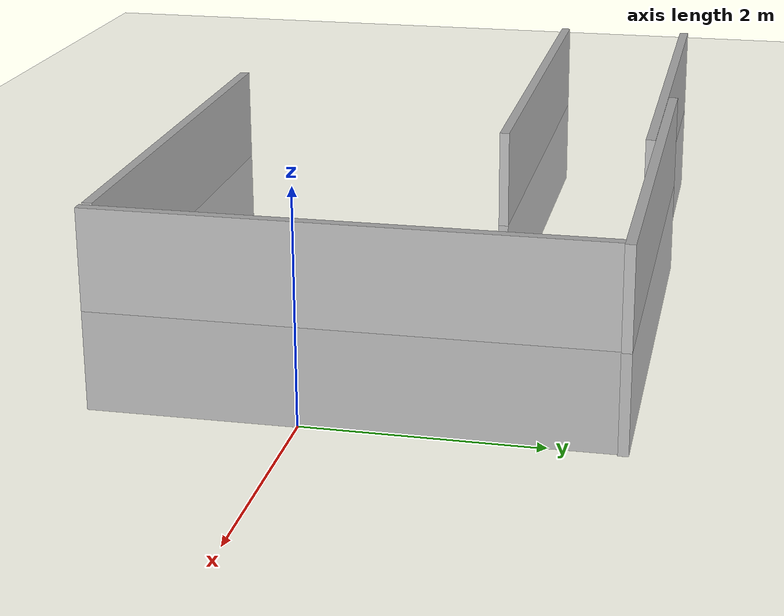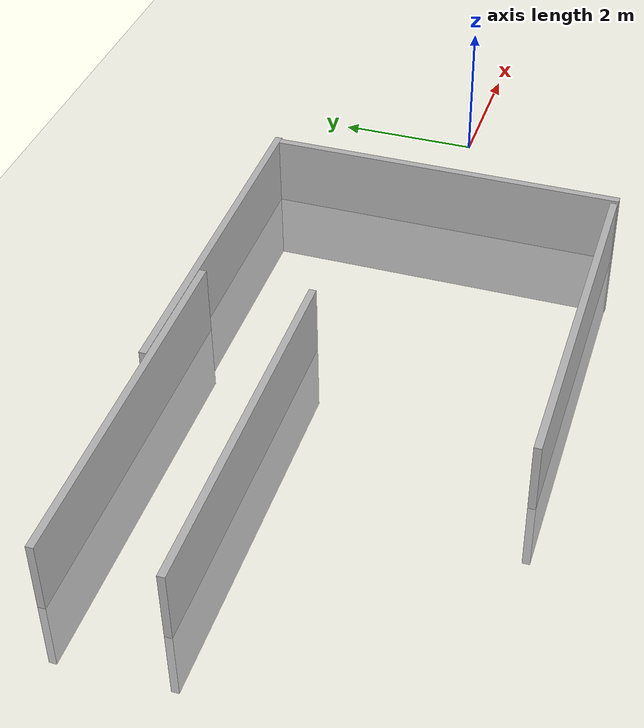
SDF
<sdf version="1.7">
 <world name="default">
  <light name="sun" type="directional">
   <pose>0 0 10 0 -0 0</pose>
   <diffuse>0.8 0.8 0.8 1</diffuse>
   <specular>0.2 0.2 0.2 1</specular>
   <attenuation>
    <range>1000</range>
    <constant>0.9</constant>
    <linear>0.01</linear>
    <quadratic>0.001</quadratic>
   </attenuation>
   <direction>-0.5 0.1 -0.9</direction>
   <spot><inner_angle>0</inner_angle><outer_angle>0</outer_angle><falloff>0</falloff></spot>
  </light>
  <model name="ground_plane">
   <static>1</static>
   <link name="link">
    <collision name="collision">
     <geometry><plane><normal>0 0 1</normal><size>100 100</size></plane></geometry>
     <surface>
      <contact><collide_bitmask>65535</collide_bitmask></contact>
      <friction><ode><mu>100</mu><mu2>50</mu2></ode></friction>
     </surface>
    </collision>
    <visual name="visual">
     <cast_shadows>0</cast_shadows>
     <geometry><plane><normal>0 0 1</normal><size>100 100</size></plane></geometry>
     <material>
      <script><uri>file://media/materials/scripts/gazebo.material</uri><name>Gazebo/Grey</name></script>
     </material>
    </visual>
   </link>
  </model>
  <gravity>0 0 -9.8</gravity>
  <magnetic_field>6e-06 2.3e-05 -4.2e-05</magnetic_field>
  <atmosphere type="adiabatic"/>
  <physics type="ode">
   <max_step_size>0.001</max_step_size>
   <real_time_factor>1</real_time_factor>
   <real_time_update_rate>1000</real_time_update_rate>
  </physics>
  <scene><ambient>0.4 0.4 0.4 1</ambient><background>0.7 0.7 0.7 1</background><shadows>1</shadows></scene>
  <spherical_coordinates>
   <surface_model>EARTH_WGS84</surface_model>
   <latitude_deg>0</latitude_deg>
   <longitude_deg>0</longitude_deg>
   <elevation>0</elevation>
   <heading_deg>0</heading_deg>
  </spherical_coordinates>
  <model name="room_wall_2x5m_clone">
   <link name="link">
    <visual name="visual">
     <geometry><box><size>0.1 5 2</size></box></geometry>
     <material>
      <script>
       <uri>https://fuel.gazebosim.org/1.0/makerspet/models/room_wall_2x5m/1/files/material/script</uri>
       <uri>https://fuel.gazebosim.org/1.0/makerspet/models/room_wall_2x5m/1/files/material/textures</uri>
       <name>Custom/room_wall_2x5m</name>
      </script>
     </material>
    </visual>
    <collision name="collision"><geometry><box><size>0.1 5 2</size></box></geometry></collision>
   </link>
   <static>1</static>
   <pose>-7.74619 0.777525 -0 0 -0 1.57478</pose>
  </model>
  <model name="room_wall_2x5m_clone_0">
   <link name="link">
    <visual name="visual">
     <geometry><box><size>0.1 5 2</size></box></geometry>
     <material>
      <script>
       <uri>https://fuel.gazebosim.org/1.0/makerspet/models/room_wall_2x5m/1/files/material/script</uri>
       <uri>https://fuel.gazebosim.org/1.0/makerspet/models/room_wall_2x5m/1/files/material/textures</uri>
       <name>Custom/room_wall_2x5m</name>
      </script>
     </material>
    </visual>
    <collision name="collision"><geometry><box><size>0.1 5 2</size></box></geometry></collision>
   </link>
   <static>1</static>
   <pose>-7.79306 2.28149 0 0 -0 1.57478</pose>
  </model>
  <model name="room_wall_2x5m_clone_1">
   <link name="link">
    <visual name="visual">
     <geometry><box><size>0.1 5 2</size></box></geometry>
     <material>
      <script>
       <uri>https://fuel.gazebosim.org/1.0/makerspet/models/room_wall_2x5m/1/files/material/script</uri>
       <uri>https://fuel.gazebosim.org/1.0/makerspet/models/room_wall_2x5m/1/files/material/textures</uri>
       <name>Custom/room_wall_2x5m</name>
      </script>
     </material>
    </visual>
    <collision name="collision"><geometry><box><size>0.1 5 2</size></box></geometry></collision>
   </link>
   <static>1</static>
   <pose>-2.10298 -0.1398 0 0 -0 -3.138</pose>
  </model>
  <model name="room_wall_2x5m_clone_2">
   <link name="link">
    <visual name="visual">
     <geometry><box><size>0.1 5 2</size></box></geometry>
     <material>
      <script>
       <uri>https://fuel.gazebosim.org/1.0/makerspet/models/room_wall_2x5m/1/files/material/script</uri>
       <uri>https://fuel.gazebosim.org/1.0/makerspet/models/room_wall_2x5m/1/files/material/textures</uri>
       <name>Custom/room_wall_2x5m</name>
      </script>
     </material>
    </visual>
    <collision name="collision"><geometry><box><size>0.1 5 2</size></box></geometry></collision>
   </link>
   <static>1</static>
   <pose>-4.69761 -2.59129 0 0 -0 1.57478</pose>
  </model>
  <model name="room_wall_2x5m_clone_3">
   <link name="link">
    <visual name="visual">
     <geometry><box><size>0.1 5 2</size></box></geometry>
     <material>
      <script>
       <uri>https://fuel.gazebosim.org/1.0/makerspet/models/room_wall_2x5m/1/files/material/script</uri>
       <uri>https://fuel.gazebosim.org/1.0/makerspet/models/room_wall_2x5m/1/files/material/textures</uri>
       <name>Custom/room_wall_2x5m</name>
      </script>
     </material>
    </visual>
    <collision name="collision"><geometry><box><size>0.1 5 2</size></box></geometry></collision>
   </link>
   <static>1</static>
   <pose>-4.53579 2.39776 -0 0 -0 1.57478</pose>
  </model>
 </world>
</sdf>
